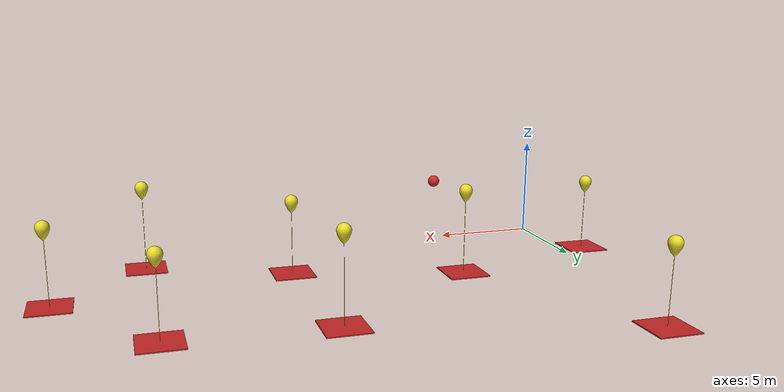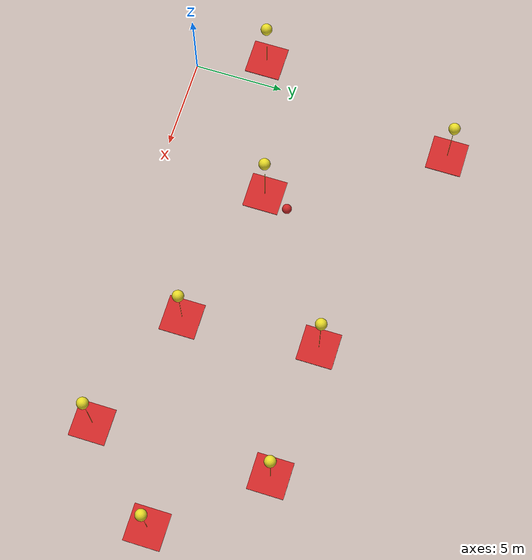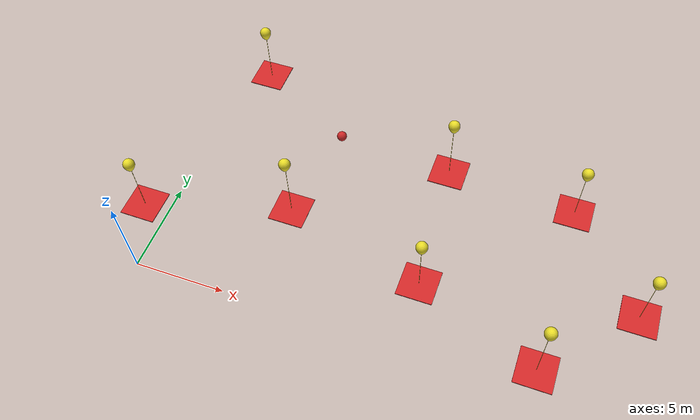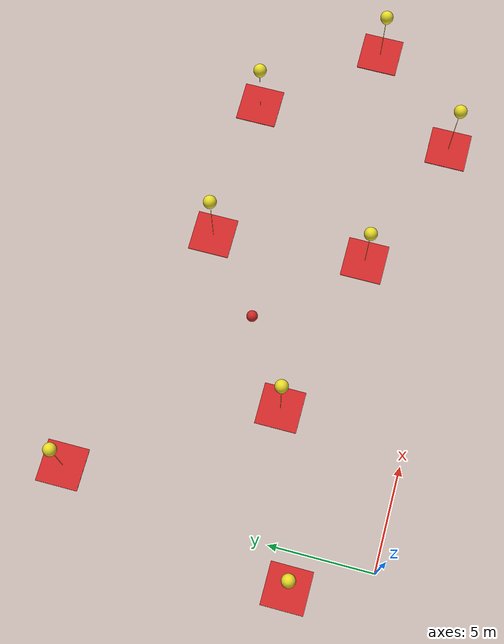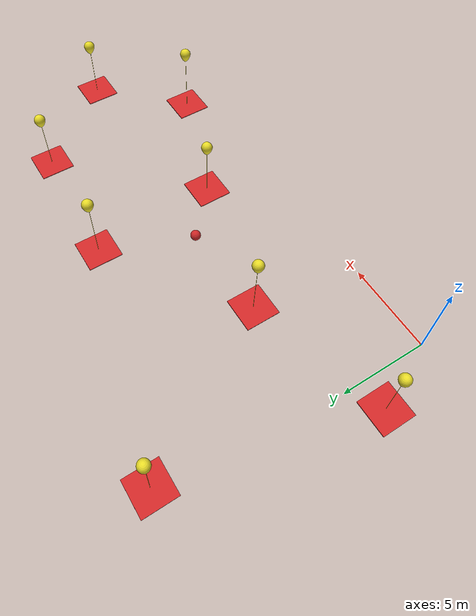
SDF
<sdf version="1.6">
 <world name="default">
  <model name="Balloon4.5m_clone_6">
   <link name="link_0">
    <pose>0 0 -0.025 0 -0 0</pose>
    <inertial>
     <mass>100</mass>
     <inertia>
      <ixx>0.166667</ixx>
      <ixy>0</ixy>
      <ixz>0</ixz>
      <iyy>0.166667</iyy>
      <iyz>0</iyz>
      <izz>0.166667</izz>
     </inertia>
    </inertial>
    <visual name="visual">
     <geometry><mesh><uri>/home/varun/MBZIRC_Arena/Balloon/Base.dae</uri><scale>1 1 1</scale></mesh></geometry>
     <material>
      <lighting>1</lighting>
      <script><uri>file://media/materials/scripts/gazebo.material</uri><name>Gazebo/Red</name></script>
      <shader type="vertex"><normal_map>__default__</normal_map></shader>
      <ambient>0.3 0.3 0.3 1</ambient>
      <diffuse>1 1 1 1</diffuse>
      <specular>0.1 0.1 0.1 1</specular>
      <emissive>0 0 0 1</emissive>
     </material>
    </visual>
    <collision name="collision">
     <geometry><mesh><uri>/home/varun/MBZIRC_Arena/Balloon/Base.dae</uri><scale>1 1 1</scale></mesh></geometry>
     <surface>
      <friction>
       <ode><mu>1</mu><mu2>1</mu2><fdir1>0 0 0</fdir1><slip1>0</slip1><slip2>0</slip2></ode>
       <torsional>
        <coefficient>1</coefficient>
        <patch_radius>0</patch_radius>
        <surface_radius>0</surface_radius>
        <use_patch_radius>1</use_patch_radius>
        <ode><slip>0</slip></ode>
       </torsional>
      </friction>
      <bounce><restitution_coefficient>0</restitution_coefficient><threshold>1e+06</threshold></bounce>
      <contact>
       <collide_without_contact>0</collide_without_contact>
       <collide_without_contact_bitmask>1</collide_without_contact_bitmask>
       <collide_bitmask>1</collide_bitmask>
       <ode>
        <soft_cfm>0</soft_cfm>
        <soft_erp>0.2</soft_erp>
        <kp>1e+13</kp>
        <kd>1</kd>
        <max_vel>0.01</max_vel>
        <min_depth>0</min_depth>
       </ode>
       <bullet>
        <split_impulse>1</split_impulse>
        <split_impulse_penetration_threshold>-0.01</split_impulse_penetration_threshold>
        <soft_cfm>0</soft_cfm>
        <soft_erp>0.2</soft_erp>
        <kp>1e+13</kp>
        <kd>1</kd>
       </bullet>
      </contact>
     </surface>
    </collision>
   </link>
   <link name="link_1">
    <pose>-0 -0 0.025 0 -0 0</pose>
    <inertial>
     <mass>0.2</mass>
     <inertia>
      <ixx>0.166667</ixx>
      <ixy>0</ixy>
      <ixz>0</ixz>
      <iyy>0.166667</iyy>
      <iyz>0</iyz>
      <izz>0.166667</izz>
     </inertia>
     <pose>0 0 4.5 0 -0 0</pose>
    </inertial>
    <visual name="visual">
     <geometry>
      <mesh><uri>/home/varun/MBZIRC_Arena/Balloon/Balloon4.5m.dae</uri><scale>1 1 1</scale></mesh>
     </geometry>
     <material>
      <lighting>1</lighting>
      <script><uri>file://media/materials/scripts/gazebo.material</uri><name>Gazebo/Yellow</name></script>
      <shader type="pixel"><normal_map>__default__</normal_map></shader>
      <ambient>0.3 0.3 0.3 1</ambient>
      <diffuse>0.7 0.7 0.7 1</diffuse>
      <specular>0.01 0.01 0.01 1</specular>
      <emissive>0 0 0 1</emissive>
     </material>
    </visual>
    <collision name="collision">
     <geometry>
      <mesh><uri>/home/varun/MBZIRC_Arena/Balloon/Balloon4.5m.dae</uri><scale>1 1 1</scale></mesh>
     </geometry>
     <surface>
      <friction>
       <ode><mu>1</mu><mu2>1</mu2><fdir1>0 0 0</fdir1><slip1>0</slip1><slip2>0</slip2></ode>
       <torsional>
        <coefficient>1</coefficient>
        <patch_radius>0</patch_radius>
        <surface_radius>0</surface_radius>
        <use_patch_radius>1</use_patch_radius>
        <ode><slip>0</slip></ode>
       </torsional>
      </friction>
      <bounce><restitution_coefficient>0</restitution_coefficient><threshold>1e+06</threshold></bounce>
      <contact>
       <collide_without_contact>0</collide_without_contact>
       <collide_without_contact_bitmask>1</collide_without_contact_bitmask>
       <collide_bitmask>1</collide_bitmask>
       <ode>
        <soft_cfm>0</soft_cfm>
        <soft_erp>0.2</soft_erp>
        <kp>1e+13</kp>
        <kd>1</kd>
        <max_vel>0.01</max_vel>
        <min_depth>0</min_depth>
       </ode>
       <bullet>
        <split_impulse>1</split_impulse>
        <split_impulse_penetration_threshold>-0.01</split_impulse_penetration_threshold>
        <soft_cfm>0</soft_cfm>
        <soft_erp>0.2</soft_erp>
        <kp>1e+13</kp>
        <kd>1</kd>
       </bullet>
      </contact>
     </surface>
    </collision>
   </link>
   <joint name="ball_joint" type="ball">
    <parent>link_0</parent>
    <child>link_1</child>
    <physics>
     <ode><limit><cfm>0</cfm><erp>0.2</erp></limit><suspension><cfm>0</cfm><erp>0.2</erp></suspension></ode>
    </physics>
   </joint>
   <static>0</static>
   <plugin name="wind_push" filename="libwind_push.so"/>
   <pose>6.31726 6.03151 -0.132547 0 0.000548 0.000148</pose>
  </model>
  <model name="Balloon4.5m_clone_7">
   <link name="link_0">
    <pose>0 0 -0.025 0 -0 0</pose>
    <inertial>
     <mass>100</mass>
     <inertia>
      <ixx>0.166667</ixx>
      <ixy>0</ixy>
      <ixz>0</ixz>
      <iyy>0.166667</iyy>
      <iyz>0</iyz>
      <izz>0.166667</izz>
     </inertia>
    </inertial>
    <visual name="visual">
     <geometry><mesh><uri>/home/varun/MBZIRC_Arena/Balloon/Base.dae</uri><scale>1 1 1</scale></mesh></geometry>
     <material>
      <lighting>1</lighting>
      <script><uri>file://media/materials/scripts/gazebo.material</uri><name>Gazebo/Red</name></script>
      <shader type="vertex"><normal_map>__default__</normal_map></shader>
      <ambient>0.3 0.3 0.3 1</ambient>
      <diffuse>1 1 1 1</diffuse>
      <specular>0.1 0.1 0.1 1</specular>
      <emissive>0 0 0 1</emissive>
     </material>
    </visual>
    <collision name="collision">
     <geometry><mesh><uri>/home/varun/MBZIRC_Arena/Balloon/Base.dae</uri><scale>1 1 1</scale></mesh></geometry>
     <surface>
      <friction>
       <ode><mu>1</mu><mu2>1</mu2><fdir1>0 0 0</fdir1><slip1>0</slip1><slip2>0</slip2></ode>
       <torsional>
        <coefficient>1</coefficient>
        <patch_radius>0</patch_radius>
        <surface_radius>0</surface_radius>
        <use_patch_radius>1</use_patch_radius>
        <ode><slip>0</slip></ode>
       </torsional>
      </friction>
      <bounce><restitution_coefficient>0</restitution_coefficient><threshold>1e+06</threshold></bounce>
      <contact>
       <collide_without_contact>0</collide_without_contact>
       <collide_without_contact_bitmask>1</collide_without_contact_bitmask>
       <collide_bitmask>1</collide_bitmask>
       <ode>
        <soft_cfm>0</soft_cfm>
        <soft_erp>0.2</soft_erp>
        <kp>1e+13</kp>
        <kd>1</kd>
        <max_vel>0.01</max_vel>
        <min_depth>0</min_depth>
       </ode>
       <bullet>
        <split_impulse>1</split_impulse>
        <split_impulse_penetration_threshold>-0.01</split_impulse_penetration_threshold>
        <soft_cfm>0</soft_cfm>
        <soft_erp>0.2</soft_erp>
        <kp>1e+13</kp>
        <kd>1</kd>
       </bullet>
      </contact>
     </surface>
    </collision>
   </link>
   <link name="link_1">
    <pose>-0 -0 0.025 0 -0 0</pose>
    <inertial>
     <mass>0.2</mass>
     <inertia>
      <ixx>0.166667</ixx>
      <ixy>0</ixy>
      <ixz>0</ixz>
      <iyy>0.166667</iyy>
      <iyz>0</iyz>
      <izz>0.166667</izz>
     </inertia>
     <pose>0 0 4.5 0 -0 0</pose>
    </inertial>
    <visual name="visual">
     <geometry>
      <mesh><uri>/home/varun/MBZIRC_Arena/Balloon/Balloon4.5m.dae</uri><scale>1 1 1</scale></mesh>
     </geometry>
     <material>
      <lighting>1</lighting>
      <script><uri>file://media/materials/scripts/gazebo.material</uri><name>Gazebo/Yellow</name></script>
      <shader type="pixel"><normal_map>__default__</normal_map></shader>
      <ambient>0.3 0.3 0.3 1</ambient>
      <diffuse>0.7 0.7 0.7 1</diffuse>
      <specular>0.01 0.01 0.01 1</specular>
      <emissive>0 0 0 1</emissive>
     </material>
    </visual>
    <collision name="collision">
     <geometry>
      <mesh><uri>/home/varun/MBZIRC_Arena/Balloon/Balloon4.5m.dae</uri><scale>1 1 1</scale></mesh>
     </geometry>
     <surface>
      <friction>
       <ode><mu>1</mu><mu2>1</mu2><fdir1>0 0 0</fdir1><slip1>0</slip1><slip2>0</slip2></ode>
       <torsional>
        <coefficient>1</coefficient>
        <patch_radius>0</patch_radius>
        <surface_radius>0</surface_radius>
        <use_patch_radius>1</use_patch_radius>
        <ode><slip>0</slip></ode>
       </torsional>
      </friction>
      <bounce><restitution_coefficient>0</restitution_coefficient><threshold>1e+06</threshold></bounce>
      <contact>
       <collide_without_contact>0</collide_without_contact>
       <collide_without_contact_bitmask>1</collide_without_contact_bitmask>
       <collide_bitmask>1</collide_bitmask>
       <ode>
        <soft_cfm>0</soft_cfm>
        <soft_erp>0.2</soft_erp>
        <kp>1e+13</kp>
        <kd>1</kd>
        <max_vel>0.01</max_vel>
        <min_depth>0</min_depth>
       </ode>
       <bullet>
        <split_impulse>1</split_impulse>
        <split_impulse_penetration_threshold>-0.01</split_impulse_penetration_threshold>
        <soft_cfm>0</soft_cfm>
        <soft_erp>0.2</soft_erp>
        <kp>1e+13</kp>
        <kd>1</kd>
       </bullet>
      </contact>
     </surface>
    </collision>
   </link>
   <joint name="ball_joint" type="ball">
    <parent>link_0</parent>
    <child>link_1</child>
    <physics>
     <ode><limit><cfm>0</cfm><erp>0.2</erp></limit><suspension><cfm>0</cfm><erp>0.2</erp></suspension></ode>
    </physics>
   </joint>
   <static>0</static>
   <plugin name="wind_push" filename="libwind_push.so"/>
   <pose>13.9024 11.4126 -0.132468 0 0.000214 0.000281</pose>
  </model>
  <model name="Balloon4.5m_clone_8">
   <link name="link_0">
    <pose>0 0 -0.025 0 -0 0</pose>
    <inertial>
     <mass>100</mass>
     <inertia>
      <ixx>0.166667</ixx>
      <ixy>0</ixy>
      <ixz>0</ixz>
      <iyy>0.166667</iyy>
      <iyz>0</iyz>
      <izz>0.166667</izz>
     </inertia>
    </inertial>
    <visual name="visual">
     <geometry><mesh><uri>/home/varun/MBZIRC_Arena/Balloon/Base.dae</uri><scale>1 1 1</scale></mesh></geometry>
     <material>
      <lighting>1</lighting>
      <script><uri>file://media/materials/scripts/gazebo.material</uri><name>Gazebo/Red</name></script>
      <shader type="vertex"><normal_map>__default__</normal_map></shader>
      <ambient>0.3 0.3 0.3 1</ambient>
      <diffuse>1 1 1 1</diffuse>
      <specular>0.1 0.1 0.1 1</specular>
      <emissive>0 0 0 1</emissive>
     </material>
    </visual>
    <collision name="collision">
     <geometry><mesh><uri>/home/varun/MBZIRC_Arena/Balloon/Base.dae</uri><scale>1 1 1</scale></mesh></geometry>
     <surface>
      <friction>
       <ode><mu>1</mu><mu2>1</mu2><fdir1>0 0 0</fdir1><slip1>0</slip1><slip2>0</slip2></ode>
       <torsional>
        <coefficient>1</coefficient>
        <patch_radius>0</patch_radius>
        <surface_radius>0</surface_radius>
        <use_patch_radius>1</use_patch_radius>
        <ode><slip>0</slip></ode>
       </torsional>
      </friction>
      <bounce><restitution_coefficient>0</restitution_coefficient><threshold>1e+06</threshold></bounce>
      <contact>
       <collide_without_contact>0</collide_without_contact>
       <collide_without_contact_bitmask>1</collide_without_contact_bitmask>
       <collide_bitmask>1</collide_bitmask>
       <ode>
        <soft_cfm>0</soft_cfm>
        <soft_erp>0.2</soft_erp>
        <kp>1e+13</kp>
        <kd>1</kd>
        <max_vel>0.01</max_vel>
        <min_depth>0</min_depth>
       </ode>
       <bullet>
        <split_impulse>1</split_impulse>
        <split_impulse_penetration_threshold>-0.01</split_impulse_penetration_threshold>
        <soft_cfm>0</soft_cfm>
        <soft_erp>0.2</soft_erp>
        <kp>1e+13</kp>
        <kd>1</kd>
       </bullet>
      </contact>
     </surface>
    </collision>
   </link>
   <link name="link_1">
    <pose>-0 -0 0.025 0 -0 0</pose>
    <inertial>
     <mass>0.2</mass>
     <inertia>
      <ixx>0.166667</ixx>
      <ixy>0</ixy>
      <ixz>0</ixz>
      <iyy>0.166667</iyy>
      <iyz>0</iyz>
      <izz>0.166667</izz>
     </inertia>
     <pose>0 0 4.5 0 -0 0</pose>
    </inertial>
    <visual name="visual">
     <geometry>
      <mesh><uri>/home/varun/MBZIRC_Arena/Balloon/Balloon4.5m.dae</uri><scale>1 1 1</scale></mesh>
     </geometry>
     <material>
      <lighting>1</lighting>
      <script><uri>file://media/materials/scripts/gazebo.material</uri><name>Gazebo/Yellow</name></script>
      <shader type="pixel"><normal_map>__default__</normal_map></shader>
      <ambient>0.3 0.3 0.3 1</ambient>
      <diffuse>0.7 0.7 0.7 1</diffuse>
      <specular>0.01 0.01 0.01 1</specular>
      <emissive>0 0 0 1</emissive>
     </material>
    </visual>
    <collision name="collision">
     <geometry>
      <mesh><uri>/home/varun/MBZIRC_Arena/Balloon/Balloon4.5m.dae</uri><scale>1 1 1</scale></mesh>
     </geometry>
     <surface>
      <friction>
       <ode><mu>1</mu><mu2>1</mu2><fdir1>0 0 0</fdir1><slip1>0</slip1><slip2>0</slip2></ode>
       <torsional>
        <coefficient>1</coefficient>
        <patch_radius>0</patch_radius>
        <surface_radius>0</surface_radius>
        <use_patch_radius>1</use_patch_radius>
        <ode><slip>0</slip></ode>
       </torsional>
      </friction>
      <bounce><restitution_coefficient>0</restitution_coefficient><threshold>1e+06</threshold></bounce>
      <contact>
       <collide_without_contact>0</collide_without_contact>
       <collide_without_contact_bitmask>1</collide_without_contact_bitmask>
       <collide_bitmask>1</collide_bitmask>
       <ode>
        <soft_cfm>0</soft_cfm>
        <soft_erp>0.2</soft_erp>
        <kp>1e+13</kp>
        <kd>1</kd>
        <max_vel>0.01</max_vel>
        <min_depth>0</min_depth>
       </ode>
       <bullet>
        <split_impulse>1</split_impulse>
        <split_impulse_penetration_threshold>-0.01</split_impulse_penetration_threshold>
        <soft_cfm>0</soft_cfm>
        <soft_erp>0.2</soft_erp>
        <kp>1e+13</kp>
        <kd>1</kd>
       </bullet>
      </contact>
     </surface>
    </collision>
   </link>
   <joint name="ball_joint" type="ball">
    <parent>link_0</parent>
    <child>link_1</child>
    <physics>
     <ode><limit><cfm>0</cfm><erp>0.2</erp></limit><suspension><cfm>0</cfm><erp>0.2</erp></suspension></ode>
    </physics>
   </joint>
   <static>0</static>
   <plugin name="wind_push" filename="libwind_push.so"/>
   <pose>21.358 1.23371 -0.132464 -0.00021 -0 0.000307</pose>
  </model>
  <model name="Balloon4m_clone_3">
   <link name="link_0">
    <pose>0 0 -0.025 0 -0 0</pose>
    <inertial>
     <mass>100</mass>
     <inertia>
      <ixx>0.166667</ixx>
      <ixy>0</ixy>
      <ixz>0</ixz>
      <iyy>0.166667</iyy>
      <iyz>0</iyz>
      <izz>0.166667</izz>
     </inertia>
    </inertial>
    <visual name="visual">
     <geometry><mesh><uri>/home/varun/MBZIRC_Arena/Balloon/Base.dae</uri><scale>1 1 1</scale></mesh></geometry>
     <material>
      <lighting>1</lighting>
      <script><uri>file://media/materials/scripts/gazebo.material</uri><name>Gazebo/Red</name></script>
      <shader type="vertex"><normal_map>__default__</normal_map></shader>
      <ambient>0.3 0.3 0.3 1</ambient>
      <diffuse>1 1 1 1</diffuse>
      <specular>0.1 0.1 0.1 1</specular>
      <emissive>0 0 0 1</emissive>
     </material>
    </visual>
    <collision name="collision">
     <geometry><mesh><uri>/home/varun/MBZIRC_Arena/Balloon/Base.dae</uri><scale>1 1 1</scale></mesh></geometry>
     <surface>
      <friction>
       <ode><mu>1</mu><mu2>1</mu2><fdir1>0 0 0</fdir1><slip1>0</slip1><slip2>0</slip2></ode>
       <torsional>
        <coefficient>1</coefficient>
        <patch_radius>0</patch_radius>
        <surface_radius>0</surface_radius>
        <use_patch_radius>1</use_patch_radius>
        <ode><slip>0</slip></ode>
       </torsional>
      </friction>
      <bounce><restitution_coefficient>0</restitution_coefficient><threshold>1e+06</threshold></bounce>
      <contact>
       <collide_without_contact>0</collide_without_contact>
       <collide_without_contact_bitmask>1</collide_without_contact_bitmask>
       <collide_bitmask>1</collide_bitmask>
       <ode>
        <soft_cfm>0</soft_cfm>
        <soft_erp>0.2</soft_erp>
        <kp>1e+13</kp>
        <kd>1</kd>
        <max_vel>0.01</max_vel>
        <min_depth>0</min_depth>
       </ode>
       <bullet>
        <split_impulse>1</split_impulse>
        <split_impulse_penetration_threshold>-0.01</split_impulse_penetration_threshold>
        <soft_cfm>0</soft_cfm>
        <soft_erp>0.2</soft_erp>
        <kp>1e+13</kp>
        <kd>1</kd>
       </bullet>
      </contact>
     </surface>
    </collision>
   </link>
   <link name="link_1">
    <pose>-0 -0 0.025 0 -0 0</pose>
    <inertial>
     <mass>0.2</mass>
     <inertia>
      <ixx>0.166667</ixx>
      <ixy>0</ixy>
      <ixz>0</ixz>
      <iyy>0.166667</iyy>
      <iyz>0</iyz>
      <izz>0.166667</izz>
     </inertia>
     <pose>0 0 4 0 -0 0</pose>
    </inertial>
    <visual name="visual">
     <geometry>
      <mesh><uri>/home/varun/MBZIRC_Arena/Balloon/Balloon4m.dae</uri><scale>1 1 1</scale></mesh>
     </geometry>
     <material>
      <lighting>1</lighting>
      <script><uri>file://media/materials/scripts/gazebo.material</uri><name>Gazebo/Yellow</name></script>
      <shader type="pixel"><normal_map>__default__</normal_map></shader>
      <ambient>0.3 0.3 0.3 1</ambient>
      <diffuse>0.7 0.7 0.7 1</diffuse>
      <specular>0.01 0.01 0.01 1</specular>
      <emissive>0 0 0 1</emissive>
     </material>
    </visual>
    <collision name="collision">
     <geometry>
      <mesh><uri>/home/varun/MBZIRC_Arena/Balloon/Balloon4m.dae</uri><scale>1 1 1</scale></mesh>
     </geometry>
     <surface>
      <friction>
       <ode><mu>1</mu><mu2>1</mu2><fdir1>0 0 0</fdir1><slip1>0</slip1><slip2>0</slip2></ode>
       <torsional>
        <coefficient>1</coefficient>
        <patch_radius>0</patch_radius>
        <surface_radius>0</surface_radius>
        <use_patch_radius>1</use_patch_radius>
        <ode><slip>0</slip></ode>
       </torsional>
      </friction>
      <bounce><restitution_coefficient>0</restitution_coefficient><threshold>1e+06</threshold></bounce>
      <contact>
       <collide_without_contact>0</collide_without_contact>
       <collide_without_contact_bitmask>1</collide_without_contact_bitmask>
       <collide_bitmask>1</collide_bitmask>
       <ode>
        <soft_cfm>0</soft_cfm>
        <soft_erp>0.2</soft_erp>
        <kp>1e+13</kp>
        <kd>1</kd>
        <max_vel>0.01</max_vel>
        <min_depth>0</min_depth>
       </ode>
       <bullet>
        <split_impulse>1</split_impulse>
        <split_impulse_penetration_threshold>-0.01</split_impulse_penetration_threshold>
        <soft_cfm>0</soft_cfm>
        <soft_erp>0.2</soft_erp>
        <kp>1e+13</kp>
        <kd>1</kd>
       </bullet>
      </contact>
     </surface>
    </collision>
   </link>
   <joint name="ball_joint" type="ball">
    <parent>link_0</parent>
    <child>link_1</child>
    <physics>
     <ode><limit><cfm>0</cfm><erp>0.2</erp></limit><suspension><cfm>0</cfm><erp>0.2</erp></suspension></ode>
    </physics>
   </joint>
   <static>0</static>
   <plugin name="wind_push" filename="libwind_push.so"/>
   <pose>-1.60231 3.66705 -0.132538 -0.000406 0.000122 -0.001002</pose>
  </model>
  <model name="Balloon4m_clone_6">
   <link name="link_0">
    <pose>0 0 -0.025 0 -0 0</pose>
    <inertial>
     <mass>100</mass>
     <inertia>
      <ixx>0.166667</ixx>
      <ixy>0</ixy>
      <ixz>0</ixz>
      <iyy>0.166667</iyy>
      <iyz>0</iyz>
      <izz>0.166667</izz>
     </inertia>
    </inertial>
    <visual name="visual">
     <geometry><mesh><uri>/home/varun/MBZIRC_Arena/Balloon/Base.dae</uri><scale>1 1 1</scale></mesh></geometry>
     <material>
      <lighting>1</lighting>
      <script><uri>file://media/materials/scripts/gazebo.material</uri><name>Gazebo/Red</name></script>
      <shader type="vertex"><normal_map>__default__</normal_map></shader>
      <ambient>0.3 0.3 0.3 1</ambient>
      <diffuse>1 1 1 1</diffuse>
      <specular>0.1 0.1 0.1 1</specular>
      <emissive>0 0 0 1</emissive>
     </material>
    </visual>
    <collision name="collision">
     <geometry><mesh><uri>/home/varun/MBZIRC_Arena/Balloon/Base.dae</uri><scale>1 1 1</scale></mesh></geometry>
     <surface>
      <friction>
       <ode><mu>1</mu><mu2>1</mu2><fdir1>0 0 0</fdir1><slip1>0</slip1><slip2>0</slip2></ode>
       <torsional>
        <coefficient>1</coefficient>
        <patch_radius>0</patch_radius>
        <surface_radius>0</surface_radius>
        <use_patch_radius>1</use_patch_radius>
        <ode><slip>0</slip></ode>
       </torsional>
      </friction>
      <bounce><restitution_coefficient>0</restitution_coefficient><threshold>1e+06</threshold></bounce>
      <contact>
       <collide_without_contact>0</collide_without_contact>
       <collide_without_contact_bitmask>1</collide_without_contact_bitmask>
       <collide_bitmask>1</collide_bitmask>
       <ode>
        <soft_cfm>0</soft_cfm>
        <soft_erp>0.2</soft_erp>
        <kp>1e+13</kp>
        <kd>1</kd>
        <max_vel>0.01</max_vel>
        <min_depth>0</min_depth>
       </ode>
       <bullet>
        <split_impulse>1</split_impulse>
        <split_impulse_penetration_threshold>-0.01</split_impulse_penetration_threshold>
        <soft_cfm>0</soft_cfm>
        <soft_erp>0.2</soft_erp>
        <kp>1e+13</kp>
        <kd>1</kd>
       </bullet>
      </contact>
     </surface>
    </collision>
   </link>
   <link name="link_1">
    <pose>-0 -0 0.025 0 -0 0</pose>
    <inertial>
     <mass>0.2</mass>
     <inertia>
      <ixx>0.166667</ixx>
      <ixy>0</ixy>
      <ixz>0</ixz>
      <iyy>0.166667</iyy>
      <iyz>0</iyz>
      <izz>0.166667</izz>
     </inertia>
     <pose>0 0 4 0 -0 0</pose>
    </inertial>
    <visual name="visual">
     <geometry>
      <mesh><uri>/home/varun/MBZIRC_Arena/Balloon/Balloon4m.dae</uri><scale>1 1 1</scale></mesh>
     </geometry>
     <material>
      <lighting>1</lighting>
      <script><uri>file://media/materials/scripts/gazebo.material</uri><name>Gazebo/Yellow</name></script>
      <shader type="pixel"><normal_map>__default__</normal_map></shader>
      <ambient>0.3 0.3 0.3 1</ambient>
      <diffuse>0.7 0.7 0.7 1</diffuse>
      <specular>0.01 0.01 0.01 1</specular>
      <emissive>0 0 0 1</emissive>
     </material>
    </visual>
    <collision name="collision">
     <geometry>
      <mesh><uri>/home/varun/MBZIRC_Arena/Balloon/Balloon4m.dae</uri><scale>1 1 1</scale></mesh>
     </geometry>
     <surface>
      <friction>
       <ode><mu>1</mu><mu2>1</mu2><fdir1>0 0 0</fdir1><slip1>0</slip1><slip2>0</slip2></ode>
       <torsional>
        <coefficient>1</coefficient>
        <patch_radius>0</patch_radius>
        <surface_radius>0</surface_radius>
        <use_patch_radius>1</use_patch_radius>
        <ode><slip>0</slip></ode>
       </torsional>
      </friction>
      <bounce><restitution_coefficient>0</restitution_coefficient><threshold>1e+06</threshold></bounce>
      <contact>
       <collide_without_contact>0</collide_without_contact>
       <collide_without_contact_bitmask>1</collide_without_contact_bitmask>
       <collide_bitmask>1</collide_bitmask>
       <ode>
        <soft_cfm>0</soft_cfm>
        <soft_erp>0.2</soft_erp>
        <kp>1e+13</kp>
        <kd>1</kd>
        <max_vel>0.01</max_vel>
        <min_depth>0</min_depth>
       </ode>
       <bullet>
        <split_impulse>1</split_impulse>
        <split_impulse_penetration_threshold>-0.01</split_impulse_penetration_threshold>
        <soft_cfm>0</soft_cfm>
        <soft_erp>0.2</soft_erp>
        <kp>1e+13</kp>
        <kd>1</kd>
       </bullet>
      </contact>
     </surface>
    </collision>
   </link>
   <joint name="ball_joint" type="ball">
    <parent>link_0</parent>
    <child>link_1</child>
    <physics>
     <ode><limit><cfm>0</cfm><erp>0.2</erp></limit><suspension><cfm>0</cfm><erp>0.2</erp></suspension></ode>
    </physics>
   </joint>
   <static>0</static>
   <plugin name="wind_push" filename="libwind_push.so"/>
   <pose>14.4703 3.90726 -0.132386 -0.000246 -0 -0.00023</pose>
  </model>
  <model name="Balloon5m_clone_1">
   <link name="link_0">
    <pose>0 0 -0.025 0 -0 0</pose>
    <inertial>
     <mass>100</mass>
     <inertia>
      <ixx>0.166667</ixx>
      <ixy>0</ixy>
      <ixz>0</ixz>
      <iyy>0.166667</iyy>
      <iyz>0</iyz>
      <izz>0.166667</izz>
     </inertia>
    </inertial>
    <visual name="visual">
     <geometry><mesh><uri>/home/varun/MBZIRC_Arena/Balloon/Base.dae</uri><scale>1 1 1</scale></mesh></geometry>
     <material>
      <lighting>1</lighting>
      <script><uri>file://media/materials/scripts/gazebo.material</uri><name>Gazebo/Red</name></script>
      <shader type="vertex"><normal_map>__default__</normal_map></shader>
      <ambient>0.3 0.3 0.3 1</ambient>
      <diffuse>1 1 1 1</diffuse>
      <specular>0.1 0.1 0.1 1</specular>
      <emissive>0 0 0 1</emissive>
     </material>
    </visual>
    <collision name="collision">
     <geometry><mesh><uri>/home/varun/MBZIRC_Arena/Balloon/Base.dae</uri><scale>1 1 1</scale></mesh></geometry>
     <surface>
      <friction>
       <ode><mu>1</mu><mu2>1</mu2><fdir1>0 0 0</fdir1><slip1>0</slip1><slip2>0</slip2></ode>
       <torsional>
        <coefficient>1</coefficient>
        <patch_radius>0</patch_radius>
        <surface_radius>0</surface_radius>
        <use_patch_radius>1</use_patch_radius>
        <ode><slip>0</slip></ode>
       </torsional>
      </friction>
      <bounce><restitution_coefficient>0</restitution_coefficient><threshold>1e+06</threshold></bounce>
      <contact>
       <collide_without_contact>0</collide_without_contact>
       <collide_without_contact_bitmask>1</collide_without_contact_bitmask>
       <collide_bitmask>1</collide_bitmask>
       <ode>
        <soft_cfm>0</soft_cfm>
        <soft_erp>0.2</soft_erp>
        <kp>1e+13</kp>
        <kd>1</kd>
        <max_vel>0.01</max_vel>
        <min_depth>0</min_depth>
       </ode>
       <bullet>
        <split_impulse>1</split_impulse>
        <split_impulse_penetration_threshold>-0.01</split_impulse_penetration_threshold>
        <soft_cfm>0</soft_cfm>
        <soft_erp>0.2</soft_erp>
        <kp>1e+13</kp>
        <kd>1</kd>
       </bullet>
      </contact>
     </surface>
    </collision>
   </link>
   <link name="link_1">
    <pose>-0 -0 0.025 0 -0 0</pose>
    <inertial>
     <mass>0.2</mass>
     <inertia>
      <ixx>0.166667</ixx>
      <ixy>0</ixy>
      <ixz>0</ixz>
      <iyy>0.166667</iyy>
      <iyz>0</iyz>
      <izz>0.166667</izz>
     </inertia>
     <pose>0 0 5 0 -0 0</pose>
    </inertial>
    <visual name="visual">
     <geometry>
      <mesh><uri>/home/varun/MBZIRC_Arena/Balloon/Balloon5m.dae</uri><scale>1 1 1</scale></mesh>
     </geometry>
     <material>
      <lighting>1</lighting>
      <script><uri>file://media/materials/scripts/gazebo.material</uri><name>Gazebo/Yellow</name></script>
      <shader type="pixel"><normal_map>__default__</normal_map></shader>
      <ambient>0.3 0.3 0.3 1</ambient>
      <diffuse>0.7 0.7 0.7 1</diffuse>
      <specular>0.01 0.01 0.01 1</specular>
      <emissive>0 0 0 1</emissive>
     </material>
    </visual>
    <collision name="collision">
     <geometry>
      <mesh><uri>/home/varun/MBZIRC_Arena/Balloon/Balloon5m.dae</uri><scale>1 1 1</scale></mesh>
     </geometry>
     <surface>
      <friction>
       <ode><mu>1</mu><mu2>1</mu2><fdir1>0 0 0</fdir1><slip1>0</slip1><slip2>0</slip2></ode>
       <torsional>
        <coefficient>1</coefficient>
        <patch_radius>0</patch_radius>
        <surface_radius>0</surface_radius>
        <use_patch_radius>1</use_patch_radius>
        <ode><slip>0</slip></ode>
       </torsional>
      </friction>
      <bounce><restitution_coefficient>0</restitution_coefficient><threshold>1e+06</threshold></bounce>
      <contact>
       <collide_without_contact>0</collide_without_contact>
       <collide_without_contact_bitmask>1</collide_without_contact_bitmask>
       <collide_bitmask>1</collide_bitmask>
       <ode>
        <soft_cfm>0</soft_cfm>
        <soft_erp>0.2</soft_erp>
        <kp>1e+13</kp>
        <kd>1</kd>
        <max_vel>0.01</max_vel>
        <min_depth>0</min_depth>
       </ode>
       <bullet>
        <split_impulse>1</split_impulse>
        <split_impulse_penetration_threshold>-0.01</split_impulse_penetration_threshold>
        <soft_cfm>0</soft_cfm>
        <soft_erp>0.2</soft_erp>
        <kp>1e+13</kp>
        <kd>1</kd>
       </bullet>
      </contact>
     </surface>
    </collision>
   </link>
   <joint name="ball_joint" type="ball">
    <parent>link_0</parent>
    <child>link_1</child>
    <physics>
     <ode><limit><cfm>0</cfm><erp>0.2</erp></limit><suspension><cfm>0</cfm><erp>0.2</erp></suspension></ode>
    </physics>
   </joint>
   <static>0</static>
   <plugin name="wind_push" filename="libwind_push.so"/>
   <pose>21.3064 11.0006 -0.132427 0 -0.000173 -0.000116</pose>
  </model>
  <model name="Balloon5m_clone_5">
   <link name="link_0">
    <pose>0 0 -0.025 0 -0 0</pose>
    <inertial>
     <mass>100</mass>
     <inertia>
      <ixx>0.166667</ixx>
      <ixy>0</ixy>
      <ixz>0</ixz>
      <iyy>0.166667</iyy>
      <iyz>0</iyz>
      <izz>0.166667</izz>
     </inertia>
    </inertial>
    <visual name="visual">
     <geometry><mesh><uri>/home/varun/MBZIRC_Arena/Balloon/Base.dae</uri><scale>1 1 1</scale></mesh></geometry>
     <material>
      <lighting>1</lighting>
      <script><uri>file://media/materials/scripts/gazebo.material</uri><name>Gazebo/Red</name></script>
      <shader type="vertex"><normal_map>__default__</normal_map></shader>
      <ambient>0.3 0.3 0.3 1</ambient>
      <diffuse>1 1 1 1</diffuse>
      <specular>0.1 0.1 0.1 1</specular>
      <emissive>0 0 0 1</emissive>
     </material>
    </visual>
    <collision name="collision">
     <geometry><mesh><uri>/home/varun/MBZIRC_Arena/Balloon/Base.dae</uri><scale>1 1 1</scale></mesh></geometry>
     <surface>
      <friction>
       <ode><mu>1</mu><mu2>1</mu2><fdir1>0 0 0</fdir1><slip1>0</slip1><slip2>0</slip2></ode>
       <torsional>
        <coefficient>1</coefficient>
        <patch_radius>0</patch_radius>
        <surface_radius>0</surface_radius>
        <use_patch_radius>1</use_patch_radius>
        <ode><slip>0</slip></ode>
       </torsional>
      </friction>
      <bounce><restitution_coefficient>0</restitution_coefficient><threshold>1e+06</threshold></bounce>
      <contact>
       <collide_without_contact>0</collide_without_contact>
       <collide_without_contact_bitmask>1</collide_without_contact_bitmask>
       <collide_bitmask>1</collide_bitmask>
       <ode>
        <soft_cfm>0</soft_cfm>
        <soft_erp>0.2</soft_erp>
        <kp>1e+13</kp>
        <kd>1</kd>
        <max_vel>0.01</max_vel>
        <min_depth>0</min_depth>
       </ode>
       <bullet>
        <split_impulse>1</split_impulse>
        <split_impulse_penetration_threshold>-0.01</split_impulse_penetration_threshold>
        <soft_cfm>0</soft_cfm>
        <soft_erp>0.2</soft_erp>
        <kp>1e+13</kp>
        <kd>1</kd>
       </bullet>
      </contact>
     </surface>
    </collision>
   </link>
   <link name="link_1">
    <pose>-0 -0 0.025 0 -0 0</pose>
    <inertial>
     <mass>0.2</mass>
     <inertia>
      <ixx>0.166667</ixx>
      <ixy>0</ixy>
      <ixz>0</ixz>
      <iyy>0.166667</iyy>
      <iyz>0</iyz>
      <izz>0.166667</izz>
     </inertia>
     <pose>0 0 5 0 -0 0</pose>
    </inertial>
    <visual name="visual">
     <geometry>
      <mesh><uri>/home/varun/MBZIRC_Arena/Balloon/Balloon5m.dae</uri><scale>1 1 1</scale></mesh>
     </geometry>
     <material>
      <lighting>1</lighting>
      <script><uri>file://media/materials/scripts/gazebo.material</uri><name>Gazebo/Yellow</name></script>
      <shader type="pixel"><normal_map>__default__</normal_map></shader>
      <ambient>0.3 0.3 0.3 1</ambient>
      <diffuse>0.7 0.7 0.7 1</diffuse>
      <specular>0.01 0.01 0.01 1</specular>
      <emissive>0 0 0 1</emissive>
     </material>
    </visual>
    <collision name="collision">
     <geometry>
      <mesh><uri>/home/varun/MBZIRC_Arena/Balloon/Balloon5m.dae</uri><scale>1 1 1</scale></mesh>
     </geometry>
     <surface>
      <friction>
       <ode><mu>1</mu><mu2>1</mu2><fdir1>0 0 0</fdir1><slip1>0</slip1><slip2>0</slip2></ode>
       <torsional>
        <coefficient>1</coefficient>
        <patch_radius>0</patch_radius>
        <surface_radius>0</surface_radius>
        <use_patch_radius>1</use_patch_radius>
        <ode><slip>0</slip></ode>
       </torsional>
      </friction>
      <bounce><restitution_coefficient>0</restitution_coefficient><threshold>1e+06</threshold></bounce>
      <contact>
       <collide_without_contact>0</collide_without_contact>
       <collide_without_contact_bitmask>1</collide_without_contact_bitmask>
       <collide_bitmask>1</collide_bitmask>
       <ode>
        <soft_cfm>0</soft_cfm>
        <soft_erp>0.2</soft_erp>
        <kp>1e+13</kp>
        <kd>1</kd>
        <max_vel>0.01</max_vel>
        <min_depth>0</min_depth>
       </ode>
       <bullet>
        <split_impulse>1</split_impulse>
        <split_impulse_penetration_threshold>-0.01</split_impulse_penetration_threshold>
        <soft_cfm>0</soft_cfm>
        <soft_erp>0.2</soft_erp>
        <kp>1e+13</kp>
        <kd>1</kd>
       </bullet>
      </contact>
     </surface>
    </collision>
   </link>
   <joint name="ball_joint" type="ball">
    <parent>link_0</parent>
    <child>link_1</child>
    <physics>
     <ode><limit><cfm>0</cfm><erp>0.2</erp></limit><suspension><cfm>0</cfm><erp>0.2</erp></suspension></ode>
    </physics>
   </joint>
   <static>0</static>
   <plugin name="wind_push" filename="libwind_push.so"/>
   <pose>25.7015 5.75434 -0.132419 0 0.000165 4.7e-05</pose>
  </model>
  <model name="Balloon5m_clone_6">
   <link name="link_0">
    <pose>0 0 -0.025 0 -0 0</pose>
    <inertial>
     <mass>100</mass>
     <inertia>
      <ixx>0.166667</ixx>
      <ixy>0</ixy>
      <ixz>0</ixz>
      <iyy>0.166667</iyy>
      <iyz>0</iyz>
      <izz>0.166667</izz>
     </inertia>
    </inertial>
    <visual name="visual">
     <geometry><mesh><uri>/home/varun/MBZIRC_Arena/Balloon/Base.dae</uri><scale>1 1 1</scale></mesh></geometry>
     <material>
      <lighting>1</lighting>
      <script><uri>file://media/materials/scripts/gazebo.material</uri><name>Gazebo/Red</name></script>
      <shader type="vertex"><normal_map>__default__</normal_map></shader>
      <ambient>0.3 0.3 0.3 1</ambient>
      <diffuse>1 1 1 1</diffuse>
      <specular>0.1 0.1 0.1 1</specular>
      <emissive>0 0 0 1</emissive>
     </material>
    </visual>
    <collision name="collision">
     <geometry><mesh><uri>/home/varun/MBZIRC_Arena/Balloon/Base.dae</uri><scale>1 1 1</scale></mesh></geometry>
     <surface>
      <friction>
       <ode><mu>1</mu><mu2>1</mu2><fdir1>0 0 0</fdir1><slip1>0</slip1><slip2>0</slip2></ode>
       <torsional>
        <coefficient>1</coefficient>
        <patch_radius>0</patch_radius>
        <surface_radius>0</surface_radius>
        <use_patch_radius>1</use_patch_radius>
        <ode><slip>0</slip></ode>
       </torsional>
      </friction>
      <bounce><restitution_coefficient>0</restitution_coefficient><threshold>1e+06</threshold></bounce>
      <contact>
       <collide_without_contact>0</collide_without_contact>
       <collide_without_contact_bitmask>1</collide_without_contact_bitmask>
       <collide_bitmask>1</collide_bitmask>
       <ode>
        <soft_cfm>0</soft_cfm>
        <soft_erp>0.2</soft_erp>
        <kp>1e+13</kp>
        <kd>1</kd>
        <max_vel>0.01</max_vel>
        <min_depth>0</min_depth>
       </ode>
       <bullet>
        <split_impulse>1</split_impulse>
        <split_impulse_penetration_threshold>-0.01</split_impulse_penetration_threshold>
        <soft_cfm>0</soft_cfm>
        <soft_erp>0.2</soft_erp>
        <kp>1e+13</kp>
        <kd>1</kd>
       </bullet>
      </contact>
     </surface>
    </collision>
   </link>
   <link name="link_1">
    <pose>-0 -0 0.025 0 -0 0</pose>
    <inertial>
     <mass>0.2</mass>
     <inertia>
      <ixx>0.166667</ixx>
      <ixy>0</ixy>
      <ixz>0</ixz>
      <iyy>0.166667</iyy>
      <iyz>0</iyz>
      <izz>0.166667</izz>
     </inertia>
     <pose>0 0 5 0 -0 0</pose>
    </inertial>
    <visual name="visual">
     <geometry>
      <mesh><uri>/home/varun/MBZIRC_Arena/Balloon/Balloon5m.dae</uri><scale>1 1 1</scale></mesh>
     </geometry>
     <material>
      <lighting>1</lighting>
      <script><uri>file://media/materials/scripts/gazebo.material</uri><name>Gazebo/Yellow</name></script>
      <shader type="pixel"><normal_map>__default__</normal_map></shader>
      <ambient>0.3 0.3 0.3 1</ambient>
      <diffuse>0.7 0.7 0.7 1</diffuse>
      <specular>0.01 0.01 0.01 1</specular>
      <emissive>0 0 0 1</emissive>
     </material>
    </visual>
    <collision name="collision">
     <geometry>
      <mesh><uri>/home/varun/MBZIRC_Arena/Balloon/Balloon5m.dae</uri><scale>1 1 1</scale></mesh>
     </geometry>
     <surface>
      <friction>
       <ode><mu>1</mu><mu2>1</mu2><fdir1>0 0 0</fdir1><slip1>0</slip1><slip2>0</slip2></ode>
       <torsional>
        <coefficient>1</coefficient>
        <patch_radius>0</patch_radius>
        <surface_radius>0</surface_radius>
        <use_patch_radius>1</use_patch_radius>
        <ode><slip>0</slip></ode>
       </torsional>
      </friction>
      <bounce><restitution_coefficient>0</restitution_coefficient><threshold>1e+06</threshold></bounce>
      <contact>
       <collide_without_contact>0</collide_without_contact>
       <collide_without_contact_bitmask>1</collide_without_contact_bitmask>
       <collide_bitmask>1</collide_bitmask>
       <ode>
        <soft_cfm>0</soft_cfm>
        <soft_erp>0.2</soft_erp>
        <kp>1</kp>
        <kd>0</kd>
        <max_vel>0.01</max_vel>
        <min_depth>0</min_depth>
       </ode>
       <bullet>
        <split_impulse>1</split_impulse>
        <split_impulse_penetration_threshold>-0.01</split_impulse_penetration_threshold>
        <soft_cfm>0</soft_cfm>
        <soft_erp>0.2</soft_erp>
        <kp>1</kp>
        <kd>1</kd>
       </bullet>
      </contact>
     </surface>
    </collision>
   </link>
   <joint name="ball_joint" type="ball">
    <parent>link_0</parent>
    <child>link_1</child>
    <physics>
     <ode><limit><cfm>0</cfm><erp>0.2</erp></limit><suspension><cfm>0</cfm><erp>0.2</erp></suspension></ode>
    </physics>
   </joint>
   <static>0</static>
   <plugin name="wind_push" filename="libwind_push.so"/>
   <pose>1.13705 15.0737 -0.132612 0 0.000358 -5e-05</pose>
  </model>
  <model name="target_sphere">
   <link name="link">
    <inertial>
     <mass>1</mass>
     <inertia><ixx>0.1</ixx><ixy>0</ixy><ixz>0</ixz><iyy>0.1</iyy><iyz>0</iyz><izz>0.1</izz></inertia>
    </inertial>
    <gravity>0</gravity>
    <visual name="visual">
     <geometry><sphere><radius>0.25</radius></sphere></geometry>
     <material>
      <script><name>Gazebo/Red</name><uri>file://media/materials/scripts/gazebo.material</uri></script>
      <shader type="pixel"><normal_map>__default__</normal_map></shader>
      <ambient>0.3 0.3 0.3 1</ambient>
      <diffuse>1 0 0 1</diffuse>
      <specular>0.5 0.5 0.5 1</specular>
      <emissive>0 0 0 1</emissive>
     </material>
    </visual>
    <collision name="collision">
     <geometry><sphere><radius>0.25</radius></sphere></geometry>
     <surface>
      <friction>
       <ode><mu>1</mu><mu2>1</mu2><fdir1>0 0 0</fdir1><slip1>0</slip1><slip2>0</slip2></ode>
       <torsional>
        <coefficient>1</coefficient>
        <patch_radius>0</patch_radius>
        <surface_radius>0</surface_radius>
        <use_patch_radius>1</use_patch_radius>
        <ode><slip>0</slip></ode>
       </torsional>
      </friction>
      <bounce><restitution_coefficient>0</restitution_coefficient><threshold>1e+06</threshold></bounce>
      <contact>
       <collide_without_contact>0</collide_without_contact>
       <collide_without_contact_bitmask>1</collide_without_contact_bitmask>
       <collide_bitmask>1</collide_bitmask>
       <ode>
        <soft_cfm>0</soft_cfm>
        <soft_erp>0.2</soft_erp>
        <kp>1e+13</kp>
        <kd>1</kd>
        <max_vel>0.01</max_vel>
        <min_depth>0</min_depth>
       </ode>
       <bullet>
        <split_impulse>1</split_impulse>
        <split_impulse_penetration_threshold>-0.01</split_impulse_penetration_threshold>
        <soft_cfm>0</soft_cfm>
        <soft_erp>0.2</soft_erp>
        <kp>1e+13</kp>
        <kd>1</kd>
       </bullet>
      </contact>
     </surface>
    </collision>
   </link>
   <static>0</static>
   <plugin name="ellipse_move" filename="libellipse_equation.so"/>
   <pose>8.79325 8.01992 5 0 -0 0</pose>
  </model>
 </world>
</sdf>
